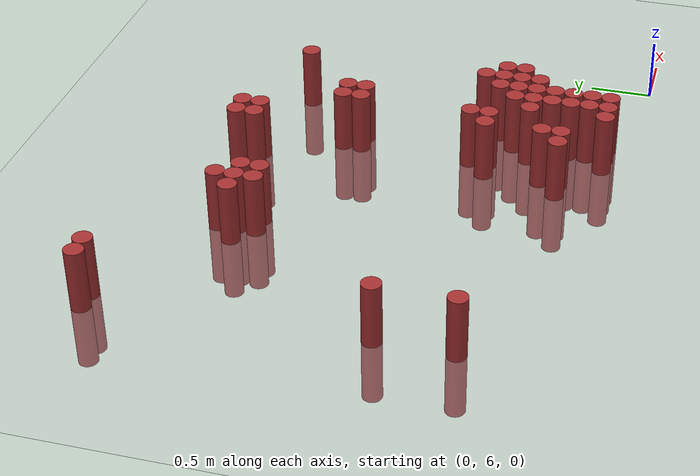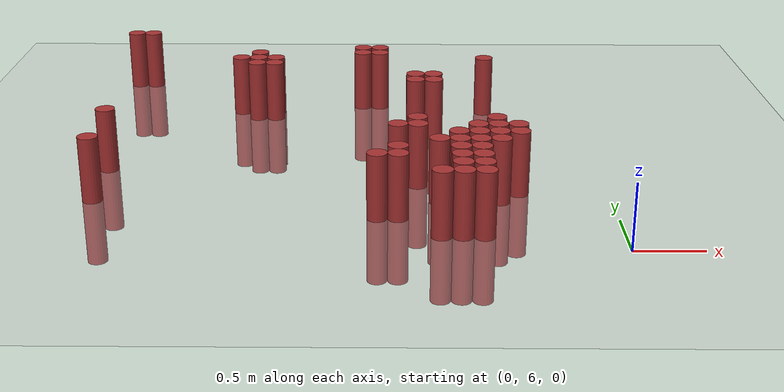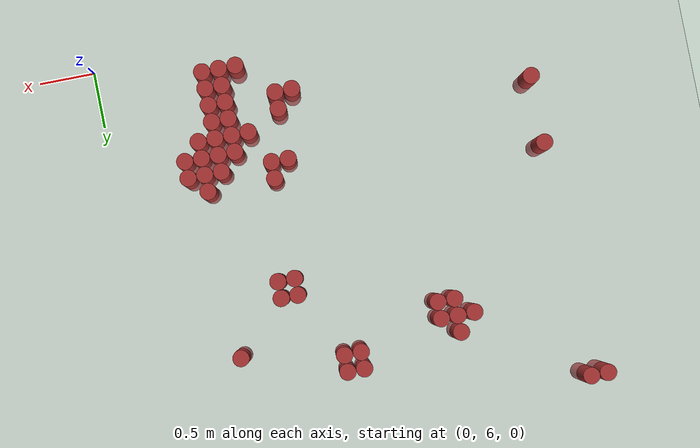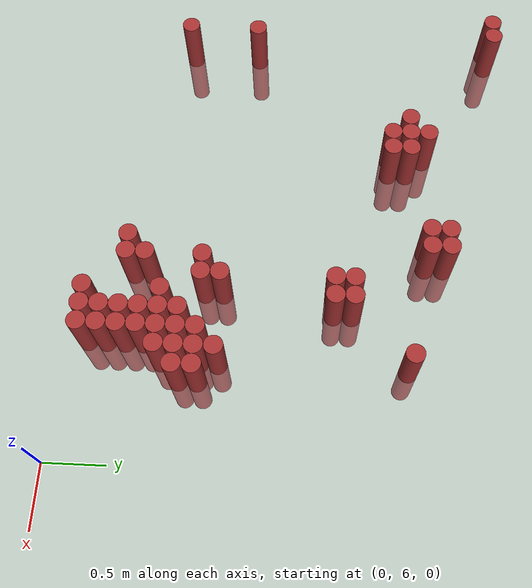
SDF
<sdf version="1.6">
 <world name="default">
  <model name="ground_plane">
   <static>1</static>
   <link name="link">
    <collision name="collision">
     <geometry><plane><normal>0 0 1</normal><size>100 100</size></plane></geometry>
     <surface><friction><ode><mu>100</mu><mu2>50</mu2></ode></friction></surface>
    </collision>
    <visual name="visual">
     <cast_shadows>0</cast_shadows>
     <geometry><plane><normal>0 0 1</normal><size>100 100</size></plane></geometry>
     <material>
      <script><uri>file://media/materials/scripts/gazebo.material</uri><name>Gazebo/Grey</name></script>
     </material>
    </visual>
   </link>
  </model>
  <model name="unit_cylinder_156">
   <static>1</static>
   <pose>-3.975000 9.525000 0.000000 0.000000 0.000000 0.000000</pose>
   <link name="link">
    <inertial>
     <mass>1</mass>
     <inertia><ixx>0.145833</ixx><ixy>0</ixy><ixz>0</ixz><iyy>0.145833</iyy><iyz>0</iyz><izz>0.125</izz></inertia>
    </inertial>
    <collision name="collision">
     <geometry><cylinder><radius>0.075000</radius><length>1</length></cylinder></geometry>
    </collision>
    <visual name="visual">
     <geometry><cylinder><radius>0.075000</radius><length>1</length></cylinder></geometry>
     <material>
      <ambient>0.648000 0.192000 0.192000 1</ambient>
      <diffuse>0.648000 0.192000 0.192000 1</diffuse>
     </material>
     <material>
      <script><name>Gazebo/Grey</name><uri>file://media/materials/scripts/gazebo.material</uri></script>
     </material>
    </visual>
   </link>
  </model>
  <model name="unit_cylinder_157">
   <static>1</static>
   <pose>-3.825000 6.825000 0.000000 0.000000 0.000000 0.000000</pose>
   <link name="link">
    <inertial>
     <mass>1</mass>
     <inertia><ixx>0.145833</ixx><ixy>0</ixy><ixz>0</ixz><iyy>0.145833</iyy><iyz>0</iyz><izz>0.125</izz></inertia>
    </inertial>
    <collision name="collision">
     <geometry><cylinder><radius>0.075000</radius><length>1</length></cylinder></geometry>
    </collision>
    <visual name="visual">
     <geometry><cylinder><radius>0.075000</radius><length>1</length></cylinder></geometry>
     <material>
      <ambient>0.648000 0.192000 0.192000 1</ambient>
      <diffuse>0.648000 0.192000 0.192000 1</diffuse>
     </material>
     <material>
      <script><name>Gazebo/Grey</name><uri>file://media/materials/scripts/gazebo.material</uri></script>
     </material>
    </visual>
   </link>
  </model>
  <model name="unit_cylinder_158">
   <static>1</static>
   <pose>-3.825000 7.425000 0.000000 0.000000 0.000000 0.000000</pose>
   <link name="link">
    <inertial>
     <mass>1</mass>
     <inertia><ixx>0.145833</ixx><ixy>0</ixy><ixz>0</ixz><iyy>0.145833</iyy><iyz>0</iyz><izz>0.125</izz></inertia>
    </inertial>
    <collision name="collision">
     <geometry><cylinder><radius>0.075000</radius><length>1</length></cylinder></geometry>
    </collision>
    <visual name="visual">
     <geometry><cylinder><radius>0.075000</radius><length>1</length></cylinder></geometry>
     <material>
      <ambient>0.648000 0.192000 0.192000 1</ambient>
      <diffuse>0.648000 0.192000 0.192000 1</diffuse>
     </material>
     <material>
      <script><name>Gazebo/Grey</name><uri>file://media/materials/scripts/gazebo.material</uri></script>
     </material>
    </visual>
   </link>
  </model>
  <model name="unit_cylinder_159">
   <static>1</static>
   <pose>-3.825000 9.525000 0.000000 0.000000 0.000000 0.000000</pose>
   <link name="link">
    <inertial>
     <mass>1</mass>
     <inertia><ixx>0.145833</ixx><ixy>0</ixy><ixz>0</ixz><iyy>0.145833</iyy><iyz>0</iyz><izz>0.125</izz></inertia>
    </inertial>
    <collision name="collision">
     <geometry><cylinder><radius>0.075000</radius><length>1</length></cylinder></geometry>
    </collision>
    <visual name="visual">
     <geometry><cylinder><radius>0.075000</radius><length>1</length></cylinder></geometry>
     <material>
      <ambient>0.648000 0.192000 0.192000 1</ambient>
      <diffuse>0.648000 0.192000 0.192000 1</diffuse>
     </material>
     <material>
      <script><name>Gazebo/Grey</name><uri>file://media/materials/scripts/gazebo.material</uri></script>
     </material>
    </visual>
   </link>
  </model>
  <model name="unit_cylinder_160">
   <static>1</static>
   <pose>-2.925000 8.775000 0.000000 0.000000 0.000000 0.000000</pose>
   <link name="link">
    <inertial>
     <mass>1</mass>
     <inertia><ixx>0.145833</ixx><ixy>0</ixy><ixz>0</ixz><iyy>0.145833</iyy><iyz>0</iyz><izz>0.125</izz></inertia>
    </inertial>
    <collision name="collision">
     <geometry><cylinder><radius>0.075000</radius><length>1</length></cylinder></geometry>
    </collision>
    <visual name="visual">
     <geometry><cylinder><radius>0.075000</radius><length>1</length></cylinder></geometry>
     <material>
      <ambient>0.648000 0.192000 0.192000 1</ambient>
      <diffuse>0.648000 0.192000 0.192000 1</diffuse>
     </material>
     <material>
      <script><name>Gazebo/Grey</name><uri>file://media/materials/scripts/gazebo.material</uri></script>
     </material>
    </visual>
   </link>
  </model>
  <model name="unit_cylinder_163">
   <static>1</static>
   <pose>-2.775000 8.625000 0.000000 0.000000 0.000000 0.000000</pose>
   <link name="link">
    <inertial>
     <mass>1</mass>
     <inertia><ixx>0.145833</ixx><ixy>0</ixy><ixz>0</ixz><iyy>0.145833</iyy><iyz>0</iyz><izz>0.125</izz></inertia>
    </inertial>
    <collision name="collision">
     <geometry><cylinder><radius>0.075000</radius><length>1</length></cylinder></geometry>
    </collision>
    <visual name="visual">
     <geometry><cylinder><radius>0.075000</radius><length>1</length></cylinder></geometry>
     <material>
      <ambient>0.648000 0.192000 0.192000 1</ambient>
      <diffuse>0.648000 0.192000 0.192000 1</diffuse>
     </material>
     <material>
      <script><name>Gazebo/Grey</name><uri>file://media/materials/scripts/gazebo.material</uri></script>
     </material>
    </visual>
   </link>
  </model>
  <model name="unit_cylinder_164">
   <static>1</static>
   <pose>-2.775000 8.775000 0.000000 0.000000 0.000000 0.000000</pose>
   <link name="link">
    <inertial>
     <mass>1</mass>
     <inertia><ixx>0.145833</ixx><ixy>0</ixy><ixz>0</ixz><iyy>0.145833</iyy><iyz>0</iyz><izz>0.125</izz></inertia>
    </inertial>
    <collision name="collision">
     <geometry><cylinder><radius>0.075000</radius><length>1</length></cylinder></geometry>
    </collision>
    <visual name="visual">
     <geometry><cylinder><radius>0.075000</radius><length>1</length></cylinder></geometry>
     <material>
      <ambient>0.648000 0.192000 0.192000 1</ambient>
      <diffuse>0.648000 0.192000 0.192000 1</diffuse>
     </material>
     <material>
      <script><name>Gazebo/Grey</name><uri>file://media/materials/scripts/gazebo.material</uri></script>
     </material>
    </visual>
   </link>
  </model>
  <model name="unit_cylinder_165">
   <static>1</static>
   <pose>-2.775000 8.925000 0.000000 0.000000 0.000000 0.000000</pose>
   <link name="link">
    <inertial>
     <mass>1</mass>
     <inertia><ixx>0.145833</ixx><ixy>0</ixy><ixz>0</ixz><iyy>0.145833</iyy><iyz>0</iyz><izz>0.125</izz></inertia>
    </inertial>
    <collision name="collision">
     <geometry><cylinder><radius>0.075000</radius><length>1</length></cylinder></geometry>
    </collision>
    <visual name="visual">
     <geometry><cylinder><radius>0.075000</radius><length>1</length></cylinder></geometry>
     <material>
      <ambient>0.648000 0.192000 0.192000 1</ambient>
      <diffuse>0.648000 0.192000 0.192000 1</diffuse>
     </material>
     <material>
      <script><name>Gazebo/Grey</name><uri>file://media/materials/scripts/gazebo.material</uri></script>
     </material>
    </visual>
   </link>
  </model>
  <model name="unit_cylinder_167">
   <static>1</static>
   <pose>-2.625000 8.625000 0.000000 0.000000 0.000000 0.000000</pose>
   <link name="link">
    <inertial>
     <mass>1</mass>
     <inertia><ixx>0.145833</ixx><ixy>0</ixy><ixz>0</ixz><iyy>0.145833</iyy><iyz>0</iyz><izz>0.125</izz></inertia>
    </inertial>
    <collision name="collision">
     <geometry><cylinder><radius>0.075000</radius><length>1</length></cylinder></geometry>
    </collision>
    <visual name="visual">
     <geometry><cylinder><radius>0.075000</radius><length>1</length></cylinder></geometry>
     <material>
      <ambient>0.648000 0.192000 0.192000 1</ambient>
      <diffuse>0.648000 0.192000 0.192000 1</diffuse>
     </material>
     <material>
      <script><name>Gazebo/Grey</name><uri>file://media/materials/scripts/gazebo.material</uri></script>
     </material>
    </visual>
   </link>
  </model>
  <model name="unit_cylinder_168">
   <static>1</static>
   <pose>-2.625000 8.775000 0.000000 0.000000 0.000000 0.000000</pose>
   <link name="link">
    <inertial>
     <mass>1</mass>
     <inertia><ixx>0.145833</ixx><ixy>0</ixy><ixz>0</ixz><iyy>0.145833</iyy><iyz>0</iyz><izz>0.125</izz></inertia>
    </inertial>
    <collision name="collision">
     <geometry><cylinder><radius>0.075000</radius><length>1</length></cylinder></geometry>
    </collision>
    <visual name="visual">
     <geometry><cylinder><radius>0.075000</radius><length>1</length></cylinder></geometry>
     <material>
      <ambient>0.648000 0.192000 0.192000 1</ambient>
      <diffuse>0.648000 0.192000 0.192000 1</diffuse>
     </material>
     <material>
      <script><name>Gazebo/Grey</name><uri>file://media/materials/scripts/gazebo.material</uri></script>
     </material>
    </visual>
   </link>
  </model>
  <model name="unit_cylinder_169">
   <static>1</static>
   <pose>-1.875000 8.925000 0.000000 0.000000 0.000000 0.000000</pose>
   <link name="link">
    <inertial>
     <mass>1</mass>
     <inertia><ixx>0.145833</ixx><ixy>0</ixy><ixz>0</ixz><iyy>0.145833</iyy><iyz>0</iyz><izz>0.125</izz></inertia>
    </inertial>
    <collision name="collision">
     <geometry><cylinder><radius>0.075000</radius><length>1</length></cylinder></geometry>
    </collision>
    <visual name="visual">
     <geometry><cylinder><radius>0.075000</radius><length>1</length></cylinder></geometry>
     <material>
      <ambient>0.648000 0.192000 0.192000 1</ambient>
      <diffuse>0.648000 0.192000 0.192000 1</diffuse>
     </material>
     <material>
      <script><name>Gazebo/Grey</name><uri>file://media/materials/scripts/gazebo.material</uri></script>
     </material>
    </visual>
   </link>
  </model>
  <model name="unit_cylinder_170">
   <static>1</static>
   <pose>-1.875000 9.075000 0.000000 0.000000 0.000000 0.000000</pose>
   <link name="link">
    <inertial>
     <mass>1</mass>
     <inertia><ixx>0.145833</ixx><ixy>0</ixy><ixz>0</ixz><iyy>0.145833</iyy><iyz>0</iyz><izz>0.125</izz></inertia>
    </inertial>
    <collision name="collision">
     <geometry><cylinder><radius>0.075000</radius><length>1</length></cylinder></geometry>
    </collision>
    <visual name="visual">
     <geometry><cylinder><radius>0.075000</radius><length>1</length></cylinder></geometry>
     <material>
      <ambient>0.648000 0.192000 0.192000 1</ambient>
      <diffuse>0.648000 0.192000 0.192000 1</diffuse>
     </material>
     <material>
      <script><name>Gazebo/Grey</name><uri>file://media/materials/scripts/gazebo.material</uri></script>
     </material>
    </visual>
   </link>
  </model>
  <model name="unit_cylinder_171">
   <static>1</static>
   <pose>-1.725000 6.525000 0.000000 0.000000 0.000000 0.000000</pose>
   <link name="link">
    <inertial>
     <mass>1</mass>
     <inertia><ixx>0.145833</ixx><ixy>0</ixy><ixz>0</ixz><iyy>0.145833</iyy><iyz>0</iyz><izz>0.125</izz></inertia>
    </inertial>
    <collision name="collision">
     <geometry><cylinder><radius>0.075000</radius><length>1</length></cylinder></geometry>
    </collision>
    <visual name="visual">
     <geometry><cylinder><radius>0.075000</radius><length>1</length></cylinder></geometry>
     <material>
      <ambient>0.648000 0.192000 0.192000 1</ambient>
      <diffuse>0.648000 0.192000 0.192000 1</diffuse>
     </material>
     <material>
      <script><name>Gazebo/Grey</name><uri>file://media/materials/scripts/gazebo.material</uri></script>
     </material>
    </visual>
   </link>
  </model>
  <model name="unit_cylinder_172">
   <static>1</static>
   <pose>-1.725000 8.925000 0.000000 0.000000 0.000000 0.000000</pose>
   <link name="link">
    <inertial>
     <mass>1</mass>
     <inertia><ixx>0.145833</ixx><ixy>0</ixy><ixz>0</ixz><iyy>0.145833</iyy><iyz>0</iyz><izz>0.125</izz></inertia>
    </inertial>
    <collision name="collision">
     <geometry><cylinder><radius>0.075000</radius><length>1</length></cylinder></geometry>
    </collision>
    <visual name="visual">
     <geometry><cylinder><radius>0.075000</radius><length>1</length></cylinder></geometry>
     <material>
      <ambient>0.648000 0.192000 0.192000 1</ambient>
      <diffuse>0.648000 0.192000 0.192000 1</diffuse>
     </material>
     <material>
      <script><name>Gazebo/Grey</name><uri>file://media/materials/scripts/gazebo.material</uri></script>
     </material>
    </visual>
   </link>
  </model>
  <model name="unit_cylinder_173">
   <static>1</static>
   <pose>-1.725000 9.075000 0.000000 0.000000 0.000000 0.000000</pose>
   <link name="link">
    <inertial>
     <mass>1</mass>
     <inertia><ixx>0.145833</ixx><ixy>0</ixy><ixz>0</ixz><iyy>0.145833</iyy><iyz>0</iyz><izz>0.125</izz></inertia>
    </inertial>
    <collision name="collision">
     <geometry><cylinder><radius>0.075000</radius><length>1</length></cylinder></geometry>
    </collision>
    <visual name="visual">
     <geometry><cylinder><radius>0.075000</radius><length>1</length></cylinder></geometry>
     <material>
      <ambient>0.648000 0.192000 0.192000 1</ambient>
      <diffuse>0.648000 0.192000 0.192000 1</diffuse>
     </material>
     <material>
      <script><name>Gazebo/Grey</name><uri>file://media/materials/scripts/gazebo.material</uri></script>
     </material>
    </visual>
   </link>
  </model>
  <model name="unit_cylinder_174">
   <static>1</static>
   <pose>-1.575000 6.525000 0.000000 0.000000 0.000000 0.000000</pose>
   <link name="link">
    <inertial>
     <mass>1</mass>
     <inertia><ixx>0.145833</ixx><ixy>0</ixy><ixz>0</ixz><iyy>0.145833</iyy><iyz>0</iyz><izz>0.125</izz></inertia>
    </inertial>
    <collision name="collision">
     <geometry><cylinder><radius>0.075000</radius><length>1</length></cylinder></geometry>
    </collision>
    <visual name="visual">
     <geometry><cylinder><radius>0.075000</radius><length>1</length></cylinder></geometry>
     <material>
      <ambient>0.648000 0.192000 0.192000 1</ambient>
      <diffuse>0.648000 0.192000 0.192000 1</diffuse>
     </material>
     <material>
      <script><name>Gazebo/Grey</name><uri>file://media/materials/scripts/gazebo.material</uri></script>
     </material>
    </visual>
   </link>
  </model>
  <model name="unit_cylinder_175">
   <static>1</static>
   <pose>-1.575000 6.675000 0.000000 0.000000 0.000000 0.000000</pose>
   <link name="link">
    <inertial>
     <mass>1</mass>
     <inertia><ixx>0.145833</ixx><ixy>0</ixy><ixz>0</ixz><iyy>0.145833</iyy><iyz>0</iyz><izz>0.125</izz></inertia>
    </inertial>
    <collision name="collision">
     <geometry><cylinder><radius>0.075000</radius><length>1</length></cylinder></geometry>
    </collision>
    <visual name="visual">
     <geometry><cylinder><radius>0.075000</radius><length>1</length></cylinder></geometry>
     <material>
      <ambient>0.648000 0.192000 0.192000 1</ambient>
      <diffuse>0.648000 0.192000 0.192000 1</diffuse>
     </material>
     <material>
      <script><name>Gazebo/Grey</name><uri>file://media/materials/scripts/gazebo.material</uri></script>
     </material>
    </visual>
   </link>
  </model>
  <model name="unit_cylinder_176">
   <static>1</static>
   <pose>-1.575000 7.125000 0.000000 0.000000 0.000000 0.000000</pose>
   <link name="link">
    <inertial>
     <mass>1</mass>
     <inertia><ixx>0.145833</ixx><ixy>0</ixy><ixz>0</ixz><iyy>0.145833</iyy><iyz>0</iyz><izz>0.125</izz></inertia>
    </inertial>
    <collision name="collision">
     <geometry><cylinder><radius>0.075000</radius><length>1</length></cylinder></geometry>
    </collision>
    <visual name="visual">
     <geometry><cylinder><radius>0.075000</radius><length>1</length></cylinder></geometry>
     <material>
      <ambient>0.648000 0.192000 0.192000 1</ambient>
      <diffuse>0.648000 0.192000 0.192000 1</diffuse>
     </material>
     <material>
      <script><name>Gazebo/Grey</name><uri>file://media/materials/scripts/gazebo.material</uri></script>
     </material>
    </visual>
   </link>
  </model>
  <model name="unit_cylinder_180">
   <static>1</static>
   <pose>-1.425000 7.125000 0.000000 0.000000 0.000000 0.000000</pose>
   <link name="link">
    <inertial>
     <mass>1</mass>
     <inertia><ixx>0.145833</ixx><ixy>0</ixy><ixz>0</ixz><iyy>0.145833</iyy><iyz>0</iyz><izz>0.125</izz></inertia>
    </inertial>
    <collision name="collision">
     <geometry><cylinder><radius>0.075000</radius><length>1</length></cylinder></geometry>
    </collision>
    <visual name="visual">
     <geometry><cylinder><radius>0.075000</radius><length>1</length></cylinder></geometry>
     <material>
      <ambient>0.648000 0.192000 0.192000 1</ambient>
      <diffuse>0.648000 0.192000 0.192000 1</diffuse>
     </material>
     <material>
      <script><name>Gazebo/Grey</name><uri>file://media/materials/scripts/gazebo.material</uri></script>
     </material>
    </visual>
   </link>
  </model>
  <model name="unit_cylinder_181">
   <static>1</static>
   <pose>-1.425000 7.275000 0.000000 0.000000 0.000000 0.000000</pose>
   <link name="link">
    <inertial>
     <mass>1</mass>
     <inertia><ixx>0.145833</ixx><ixy>0</ixy><ixz>0</ixz><iyy>0.145833</iyy><iyz>0</iyz><izz>0.125</izz></inertia>
    </inertial>
    <collision name="collision">
     <geometry><cylinder><radius>0.075000</radius><length>1</length></cylinder></geometry>
    </collision>
    <visual name="visual">
     <geometry><cylinder><radius>0.075000</radius><length>1</length></cylinder></geometry>
     <material>
      <ambient>0.648000 0.192000 0.192000 1</ambient>
      <diffuse>0.648000 0.192000 0.192000 1</diffuse>
     </material>
     <material>
      <script><name>Gazebo/Grey</name><uri>file://media/materials/scripts/gazebo.material</uri></script>
     </material>
    </visual>
   </link>
  </model>
  <model name="unit_cylinder_182">
   <static>1</static>
   <pose>-1.425000 8.175000 0.000000 0.000000 0.000000 0.000000</pose>
   <link name="link">
    <inertial>
     <mass>1</mass>
     <inertia><ixx>0.145833</ixx><ixy>0</ixy><ixz>0</ixz><iyy>0.145833</iyy><iyz>0</iyz><izz>0.125</izz></inertia>
    </inertial>
    <collision name="collision">
     <geometry><cylinder><radius>0.075000</radius><length>1</length></cylinder></geometry>
    </collision>
    <visual name="visual">
     <geometry><cylinder><radius>0.075000</radius><length>1</length></cylinder></geometry>
     <material>
      <ambient>0.648000 0.192000 0.192000 1</ambient>
      <diffuse>0.648000 0.192000 0.192000 1</diffuse>
     </material>
     <material>
      <script><name>Gazebo/Grey</name><uri>file://media/materials/scripts/gazebo.material</uri></script>
     </material>
    </visual>
   </link>
  </model>
  <model name="unit_cylinder_183">
   <static>1</static>
   <pose>-1.425000 8.325000 0.000000 0.000000 0.000000 0.000000</pose>
   <link name="link">
    <inertial>
     <mass>1</mass>
     <inertia><ixx>0.145833</ixx><ixy>0</ixy><ixz>0</ixz><iyy>0.145833</iyy><iyz>0</iyz><izz>0.125</izz></inertia>
    </inertial>
    <collision name="collision">
     <geometry><cylinder><radius>0.075000</radius><length>1</length></cylinder></geometry>
    </collision>
    <visual name="visual">
     <geometry><cylinder><radius>0.075000</radius><length>1</length></cylinder></geometry>
     <material>
      <ambient>0.648000 0.192000 0.192000 1</ambient>
      <diffuse>0.648000 0.192000 0.192000 1</diffuse>
     </material>
     <material>
      <script><name>Gazebo/Grey</name><uri>file://media/materials/scripts/gazebo.material</uri></script>
     </material>
    </visual>
   </link>
  </model>
  <model name="unit_cylinder_186">
   <static>1</static>
   <pose>-1.275000 6.225000 0.000000 0.000000 0.000000 0.000000</pose>
   <link name="link">
    <inertial>
     <mass>1</mass>
     <inertia><ixx>0.145833</ixx><ixy>0</ixy><ixz>0</ixz><iyy>0.145833</iyy><iyz>0</iyz><izz>0.125</izz></inertia>
    </inertial>
    <collision name="collision">
     <geometry><cylinder><radius>0.075000</radius><length>1</length></cylinder></geometry>
    </collision>
    <visual name="visual">
     <geometry><cylinder><radius>0.075000</radius><length>1</length></cylinder></geometry>
     <material>
      <ambient>0.648000 0.192000 0.192000 1</ambient>
      <diffuse>0.648000 0.192000 0.192000 1</diffuse>
     </material>
     <material>
      <script><name>Gazebo/Grey</name><uri>file://media/materials/scripts/gazebo.material</uri></script>
     </material>
    </visual>
   </link>
  </model>
  <model name="unit_cylinder_187">
   <static>1</static>
   <pose>-1.275000 6.825000 0.000000 0.000000 0.000000 0.000000</pose>
   <link name="link">
    <inertial>
     <mass>1</mass>
     <inertia><ixx>0.145833</ixx><ixy>0</ixy><ixz>0</ixz><iyy>0.145833</iyy><iyz>0</iyz><izz>0.125</izz></inertia>
    </inertial>
    <collision name="collision">
     <geometry><cylinder><radius>0.075000</radius><length>1</length></cylinder></geometry>
    </collision>
    <visual name="visual">
     <geometry><cylinder><radius>0.075000</radius><length>1</length></cylinder></geometry>
     <material>
      <ambient>0.648000 0.192000 0.192000 1</ambient>
      <diffuse>0.648000 0.192000 0.192000 1</diffuse>
     </material>
     <material>
      <script><name>Gazebo/Grey</name><uri>file://media/materials/scripts/gazebo.material</uri></script>
     </material>
    </visual>
   </link>
  </model>
  <model name="unit_cylinder_188">
   <static>1</static>
   <pose>-1.275000 8.175000 0.000000 0.000000 0.000000 0.000000</pose>
   <link name="link">
    <inertial>
     <mass>1</mass>
     <inertia><ixx>0.145833</ixx><ixy>0</ixy><ixz>0</ixz><iyy>0.145833</iyy><iyz>0</iyz><izz>0.125</izz></inertia>
    </inertial>
    <collision name="collision">
     <geometry><cylinder><radius>0.075000</radius><length>1</length></cylinder></geometry>
    </collision>
    <visual name="visual">
     <geometry><cylinder><radius>0.075000</radius><length>1</length></cylinder></geometry>
     <material>
      <ambient>0.648000 0.192000 0.192000 1</ambient>
      <diffuse>0.648000 0.192000 0.192000 1</diffuse>
     </material>
     <material>
      <script><name>Gazebo/Grey</name><uri>file://media/materials/scripts/gazebo.material</uri></script>
     </material>
    </visual>
   </link>
  </model>
  <model name="unit_cylinder_189">
   <static>1</static>
   <pose>-1.275000 8.325000 0.000000 0.000000 0.000000 0.000000</pose>
   <link name="link">
    <inertial>
     <mass>1</mass>
     <inertia><ixx>0.145833</ixx><ixy>0</ixy><ixz>0</ixz><iyy>0.145833</iyy><iyz>0</iyz><izz>0.125</izz></inertia>
    </inertial>
    <collision name="collision">
     <geometry><cylinder><radius>0.075000</radius><length>1</length></cylinder></geometry>
    </collision>
    <visual name="visual">
     <geometry><cylinder><radius>0.075000</radius><length>1</length></cylinder></geometry>
     <material>
      <ambient>0.648000 0.192000 0.192000 1</ambient>
      <diffuse>0.648000 0.192000 0.192000 1</diffuse>
     </material>
     <material>
      <script><name>Gazebo/Grey</name><uri>file://media/materials/scripts/gazebo.material</uri></script>
     </material>
    </visual>
   </link>
  </model>
  <model name="unit_cylinder_192">
   <static>1</static>
   <pose>-1.125000 6.225000 0.000000 0.000000 0.000000 0.000000</pose>
   <link name="link">
    <inertial>
     <mass>1</mass>
     <inertia><ixx>0.145833</ixx><ixy>0</ixy><ixz>0</ixz><iyy>0.145833</iyy><iyz>0</iyz><izz>0.125</izz></inertia>
    </inertial>
    <collision name="collision">
     <geometry><cylinder><radius>0.075000</radius><length>1</length></cylinder></geometry>
    </collision>
    <visual name="visual">
     <geometry><cylinder><radius>0.075000</radius><length>1</length></cylinder></geometry>
     <material>
      <ambient>0.648000 0.192000 0.192000 1</ambient>
      <diffuse>0.648000 0.192000 0.192000 1</diffuse>
     </material>
     <material>
      <script><name>Gazebo/Grey</name><uri>file://media/materials/scripts/gazebo.material</uri></script>
     </material>
    </visual>
   </link>
  </model>
  <model name="unit_cylinder_193">
   <static>1</static>
   <pose>-1.125000 6.375000 0.000000 0.000000 0.000000 0.000000</pose>
   <link name="link">
    <inertial>
     <mass>1</mass>
     <inertia><ixx>0.145833</ixx><ixy>0</ixy><ixz>0</ixz><iyy>0.145833</iyy><iyz>0</iyz><izz>0.125</izz></inertia>
    </inertial>
    <collision name="collision">
     <geometry><cylinder><radius>0.075000</radius><length>1</length></cylinder></geometry>
    </collision>
    <visual name="visual">
     <geometry><cylinder><radius>0.075000</radius><length>1</length></cylinder></geometry>
     <material>
      <ambient>0.648000 0.192000 0.192000 1</ambient>
      <diffuse>0.648000 0.192000 0.192000 1</diffuse>
     </material>
     <material>
      <script><name>Gazebo/Grey</name><uri>file://media/materials/scripts/gazebo.material</uri></script>
     </material>
    </visual>
   </link>
  </model>
  <model name="unit_cylinder_194">
   <static>1</static>
   <pose>-1.125000 6.525000 0.000000 0.000000 0.000000 0.000000</pose>
   <link name="link">
    <inertial>
     <mass>1</mass>
     <inertia><ixx>0.145833</ixx><ixy>0</ixy><ixz>0</ixz><iyy>0.145833</iyy><iyz>0</iyz><izz>0.125</izz></inertia>
    </inertial>
    <collision name="collision">
     <geometry><cylinder><radius>0.075000</radius><length>1</length></cylinder></geometry>
    </collision>
    <visual name="visual">
     <geometry><cylinder><radius>0.075000</radius><length>1</length></cylinder></geometry>
     <material>
      <ambient>0.648000 0.192000 0.192000 1</ambient>
      <diffuse>0.648000 0.192000 0.192000 1</diffuse>
     </material>
     <material>
      <script><name>Gazebo/Grey</name><uri>file://media/materials/scripts/gazebo.material</uri></script>
     </material>
    </visual>
   </link>
  </model>
  <model name="unit_cylinder_195">
   <static>1</static>
   <pose>-1.125000 6.675000 0.000000 0.000000 0.000000 0.000000</pose>
   <link name="link">
    <inertial>
     <mass>1</mass>
     <inertia><ixx>0.145833</ixx><ixy>0</ixy><ixz>0</ixz><iyy>0.145833</iyy><iyz>0</iyz><izz>0.125</izz></inertia>
    </inertial>
    <collision name="collision">
     <geometry><cylinder><radius>0.075000</radius><length>1</length></cylinder></geometry>
    </collision>
    <visual name="visual">
     <geometry><cylinder><radius>0.075000</radius><length>1</length></cylinder></geometry>
     <material>
      <ambient>0.648000 0.192000 0.192000 1</ambient>
      <diffuse>0.648000 0.192000 0.192000 1</diffuse>
     </material>
     <material>
      <script><name>Gazebo/Grey</name><uri>file://media/materials/scripts/gazebo.material</uri></script>
     </material>
    </visual>
   </link>
  </model>
  <model name="unit_cylinder_196">
   <static>1</static>
   <pose>-1.125000 6.825000 0.000000 0.000000 0.000000 0.000000</pose>
   <link name="link">
    <inertial>
     <mass>1</mass>
     <inertia><ixx>0.145833</ixx><ixy>0</ixy><ixz>0</ixz><iyy>0.145833</iyy><iyz>0</iyz><izz>0.125</izz></inertia>
    </inertial>
    <collision name="collision">
     <geometry><cylinder><radius>0.075000</radius><length>1</length></cylinder></geometry>
    </collision>
    <visual name="visual">
     <geometry><cylinder><radius>0.075000</radius><length>1</length></cylinder></geometry>
     <material>
      <ambient>0.648000 0.192000 0.192000 1</ambient>
      <diffuse>0.648000 0.192000 0.192000 1</diffuse>
     </material>
     <material>
      <script><name>Gazebo/Grey</name><uri>file://media/materials/scripts/gazebo.material</uri></script>
     </material>
    </visual>
   </link>
  </model>
  <model name="unit_cylinder_197">
   <static>1</static>
   <pose>-1.125000 6.975000 0.000000 0.000000 0.000000 0.000000</pose>
   <link name="link">
    <inertial>
     <mass>1</mass>
     <inertia><ixx>0.145833</ixx><ixy>0</ixy><ixz>0</ixz><iyy>0.145833</iyy><iyz>0</iyz><izz>0.125</izz></inertia>
    </inertial>
    <collision name="collision">
     <geometry><cylinder><radius>0.075000</radius><length>1</length></cylinder></geometry>
    </collision>
    <visual name="visual">
     <geometry><cylinder><radius>0.075000</radius><length>1</length></cylinder></geometry>
     <material>
      <ambient>0.648000 0.192000 0.192000 1</ambient>
      <diffuse>0.648000 0.192000 0.192000 1</diffuse>
     </material>
     <material>
      <script><name>Gazebo/Grey</name><uri>file://media/materials/scripts/gazebo.material</uri></script>
     </material>
    </visual>
   </link>
  </model>
  <model name="unit_cylinder_203">
   <static>1</static>
   <pose>-0.975000 6.225000 0.000000 0.000000 0.000000 0.000000</pose>
   <link name="link">
    <inertial>
     <mass>1</mass>
     <inertia><ixx>0.145833</ixx><ixy>0</ixy><ixz>0</ixz><iyy>0.145833</iyy><iyz>0</iyz><izz>0.125</izz></inertia>
    </inertial>
    <collision name="collision">
     <geometry><cylinder><radius>0.075000</radius><length>1</length></cylinder></geometry>
    </collision>
    <visual name="visual">
     <geometry><cylinder><radius>0.075000</radius><length>1</length></cylinder></geometry>
     <material>
      <ambient>0.648000 0.192000 0.192000 1</ambient>
      <diffuse>0.648000 0.192000 0.192000 1</diffuse>
     </material>
     <material>
      <script><name>Gazebo/Grey</name><uri>file://media/materials/scripts/gazebo.material</uri></script>
     </material>
    </visual>
   </link>
  </model>
  <model name="unit_cylinder_204">
   <static>1</static>
   <pose>-0.975000 6.375000 0.000000 0.000000 0.000000 0.000000</pose>
   <link name="link">
    <inertial>
     <mass>1</mass>
     <inertia><ixx>0.145833</ixx><ixy>0</ixy><ixz>0</ixz><iyy>0.145833</iyy><iyz>0</iyz><izz>0.125</izz></inertia>
    </inertial>
    <collision name="collision">
     <geometry><cylinder><radius>0.075000</radius><length>1</length></cylinder></geometry>
    </collision>
    <visual name="visual">
     <geometry><cylinder><radius>0.075000</radius><length>1</length></cylinder></geometry>
     <material>
      <ambient>0.648000 0.192000 0.192000 1</ambient>
      <diffuse>0.648000 0.192000 0.192000 1</diffuse>
     </material>
     <material>
      <script><name>Gazebo/Grey</name><uri>file://media/materials/scripts/gazebo.material</uri></script>
     </material>
    </visual>
   </link>
  </model>
  <model name="unit_cylinder_205">
   <static>1</static>
   <pose>-0.975000 6.525000 0.000000 0.000000 0.000000 0.000000</pose>
   <link name="link">
    <inertial>
     <mass>1</mass>
     <inertia><ixx>0.145833</ixx><ixy>0</ixy><ixz>0</ixz><iyy>0.145833</iyy><iyz>0</iyz><izz>0.125</izz></inertia>
    </inertial>
    <collision name="collision">
     <geometry><cylinder><radius>0.075000</radius><length>1</length></cylinder></geometry>
    </collision>
    <visual name="visual">
     <geometry><cylinder><radius>0.075000</radius><length>1</length></cylinder></geometry>
     <material>
      <ambient>0.648000 0.192000 0.192000 1</ambient>
      <diffuse>0.648000 0.192000 0.192000 1</diffuse>
     </material>
     <material>
      <script><name>Gazebo/Grey</name><uri>file://media/materials/scripts/gazebo.material</uri></script>
     </material>
    </visual>
   </link>
  </model>
  <model name="unit_cylinder_206">
   <static>1</static>
   <pose>-0.975000 6.675000 0.000000 0.000000 0.000000 0.000000</pose>
   <link name="link">
    <inertial>
     <mass>1</mass>
     <inertia><ixx>0.145833</ixx><ixy>0</ixy><ixz>0</ixz><iyy>0.145833</iyy><iyz>0</iyz><izz>0.125</izz></inertia>
    </inertial>
    <collision name="collision">
     <geometry><cylinder><radius>0.075000</radius><length>1</length></cylinder></geometry>
    </collision>
    <visual name="visual">
     <geometry><cylinder><radius>0.075000</radius><length>1</length></cylinder></geometry>
     <material>
      <ambient>0.648000 0.192000 0.192000 1</ambient>
      <diffuse>0.648000 0.192000 0.192000 1</diffuse>
     </material>
     <material>
      <script><name>Gazebo/Grey</name><uri>file://media/materials/scripts/gazebo.material</uri></script>
     </material>
    </visual>
   </link>
  </model>
  <model name="unit_cylinder_207">
   <static>1</static>
   <pose>-0.975000 6.825000 0.000000 0.000000 0.000000 0.000000</pose>
   <link name="link">
    <inertial>
     <mass>1</mass>
     <inertia><ixx>0.145833</ixx><ixy>0</ixy><ixz>0</ixz><iyy>0.145833</iyy><iyz>0</iyz><izz>0.125</izz></inertia>
    </inertial>
    <collision name="collision">
     <geometry><cylinder><radius>0.075000</radius><length>1</length></cylinder></geometry>
    </collision>
    <visual name="visual">
     <geometry><cylinder><radius>0.075000</radius><length>1</length></cylinder></geometry>
     <material>
      <ambient>0.648000 0.192000 0.192000 1</ambient>
      <diffuse>0.648000 0.192000 0.192000 1</diffuse>
     </material>
     <material>
      <script><name>Gazebo/Grey</name><uri>file://media/materials/scripts/gazebo.material</uri></script>
     </material>
    </visual>
   </link>
  </model>
  <model name="unit_cylinder_208">
   <static>1</static>
   <pose>-0.975000 6.975000 0.000000 0.000000 0.000000 0.000000</pose>
   <link name="link">
    <inertial>
     <mass>1</mass>
     <inertia><ixx>0.145833</ixx><ixy>0</ixy><ixz>0</ixz><iyy>0.145833</iyy><iyz>0</iyz><izz>0.125</izz></inertia>
    </inertial>
    <collision name="collision">
     <geometry><cylinder><radius>0.075000</radius><length>1</length></cylinder></geometry>
    </collision>
    <visual name="visual">
     <geometry><cylinder><radius>0.075000</radius><length>1</length></cylinder></geometry>
     <material>
      <ambient>0.648000 0.192000 0.192000 1</ambient>
      <diffuse>0.648000 0.192000 0.192000 1</diffuse>
     </material>
     <material>
      <script><name>Gazebo/Grey</name><uri>file://media/materials/scripts/gazebo.material</uri></script>
     </material>
    </visual>
   </link>
  </model>
  <model name="unit_cylinder_209">
   <static>1</static>
   <pose>-0.975000 7.125000 0.000000 0.000000 0.000000 0.000000</pose>
   <link name="link">
    <inertial>
     <mass>1</mass>
     <inertia><ixx>0.145833</ixx><ixy>0</ixy><ixz>0</ixz><iyy>0.145833</iyy><iyz>0</iyz><izz>0.125</izz></inertia>
    </inertial>
    <collision name="collision">
     <geometry><cylinder><radius>0.075000</radius><length>1</length></cylinder></geometry>
    </collision>
    <visual name="visual">
     <geometry><cylinder><radius>0.075000</radius><length>1</length></cylinder></geometry>
     <material>
      <ambient>0.648000 0.192000 0.192000 1</ambient>
      <diffuse>0.648000 0.192000 0.192000 1</diffuse>
     </material>
     <material>
      <script><name>Gazebo/Grey</name><uri>file://media/materials/scripts/gazebo.material</uri></script>
     </material>
    </visual>
   </link>
  </model>
  <model name="unit_cylinder_213">
   <static>1</static>
   <pose>-0.825000 6.825000 0.000000 0.000000 0.000000 0.000000</pose>
   <link name="link">
    <inertial>
     <mass>1</mass>
     <inertia><ixx>0.145833</ixx><ixy>0</ixy><ixz>0</ixz><iyy>0.145833</iyy><iyz>0</iyz><izz>0.125</izz></inertia>
    </inertial>
    <collision name="collision">
     <geometry><cylinder><radius>0.075000</radius><length>1</length></cylinder></geometry>
    </collision>
    <visual name="visual">
     <geometry><cylinder><radius>0.075000</radius><length>1</length></cylinder></geometry>
     <material>
      <ambient>0.648000 0.192000 0.192000 1</ambient>
      <diffuse>0.648000 0.192000 0.192000 1</diffuse>
     </material>
     <material>
      <script><name>Gazebo/Grey</name><uri>file://media/materials/scripts/gazebo.material</uri></script>
     </material>
    </visual>
   </link>
  </model>
  <model name="unit_cylinder_214">
   <static>1</static>
   <pose>-0.825000 6.975000 0.000000 0.000000 0.000000 0.000000</pose>
   <link name="link">
    <inertial>
     <mass>1</mass>
     <inertia><ixx>0.145833</ixx><ixy>0</ixy><ixz>0</ixz><iyy>0.145833</iyy><iyz>0</iyz><izz>0.125</izz></inertia>
    </inertial>
    <collision name="collision">
     <geometry><cylinder><radius>0.075000</radius><length>1</length></cylinder></geometry>
    </collision>
    <visual name="visual">
     <geometry><cylinder><radius>0.075000</radius><length>1</length></cylinder></geometry>
     <material>
      <ambient>0.648000 0.192000 0.192000 1</ambient>
      <diffuse>0.648000 0.192000 0.192000 1</diffuse>
     </material>
     <material>
      <script><name>Gazebo/Grey</name><uri>file://media/materials/scripts/gazebo.material</uri></script>
     </material>
    </visual>
   </link>
  </model>
  <model name="unit_cylinder_215">
   <static>1</static>
   <pose>-0.825000 7.125000 0.000000 0.000000 0.000000 0.000000</pose>
   <link name="link">
    <inertial>
     <mass>1</mass>
     <inertia><ixx>0.145833</ixx><ixy>0</ixy><ixz>0</ixz><iyy>0.145833</iyy><iyz>0</iyz><izz>0.125</izz></inertia>
    </inertial>
    <collision name="collision">
     <geometry><cylinder><radius>0.075000</radius><length>1</length></cylinder></geometry>
    </collision>
    <visual name="visual">
     <geometry><cylinder><radius>0.075000</radius><length>1</length></cylinder></geometry>
     <material>
      <ambient>0.648000 0.192000 0.192000 1</ambient>
      <diffuse>0.648000 0.192000 0.192000 1</diffuse>
     </material>
     <material>
      <script><name>Gazebo/Grey</name><uri>file://media/materials/scripts/gazebo.material</uri></script>
     </material>
    </visual>
   </link>
  </model>
  <model name="unit_cylinder_216">
   <static>1</static>
   <pose>-0.825000 7.275000 0.000000 0.000000 0.000000 0.000000</pose>
   <link name="link">
    <inertial>
     <mass>1</mass>
     <inertia><ixx>0.145833</ixx><ixy>0</ixy><ixz>0</ixz><iyy>0.145833</iyy><iyz>0</iyz><izz>0.125</izz></inertia>
    </inertial>
    <collision name="collision">
     <geometry><cylinder><radius>0.075000</radius><length>1</length></cylinder></geometry>
    </collision>
    <visual name="visual">
     <geometry><cylinder><radius>0.075000</radius><length>1</length></cylinder></geometry>
     <material>
      <ambient>0.648000 0.192000 0.192000 1</ambient>
      <diffuse>0.648000 0.192000 0.192000 1</diffuse>
     </material>
     <material>
      <script><name>Gazebo/Grey</name><uri>file://media/materials/scripts/gazebo.material</uri></script>
     </material>
    </visual>
   </link>
  </model>
  <model name="unit_cylinder_217">
   <static>1</static>
   <pose>-0.825000 8.775000 0.000000 0.000000 0.000000 0.000000</pose>
   <link name="link">
    <inertial>
     <mass>1</mass>
     <inertia><ixx>0.145833</ixx><ixy>0</ixy><ixz>0</ixz><iyy>0.145833</iyy><iyz>0</iyz><izz>0.125</izz></inertia>
    </inertial>
    <collision name="collision">
     <geometry><cylinder><radius>0.075000</radius><length>1</length></cylinder></geometry>
    </collision>
    <visual name="visual">
     <geometry><cylinder><radius>0.075000</radius><length>1</length></cylinder></geometry>
     <material>
      <ambient>0.648000 0.192000 0.192000 1</ambient>
      <diffuse>0.648000 0.192000 0.192000 1</diffuse>
     </material>
     <material>
      <script><name>Gazebo/Grey</name><uri>file://media/materials/scripts/gazebo.material</uri></script>
     </material>
    </visual>
   </link>
  </model>
  <model name="unit_cylinder_218">
   <static>1</static>
   <pose>-0.675000 6.975000 0.000000 0.000000 0.000000 0.000000</pose>
   <link name="link">
    <inertial>
     <mass>1</mass>
     <inertia><ixx>0.145833</ixx><ixy>0</ixy><ixz>0</ixz><iyy>0.145833</iyy><iyz>0</iyz><izz>0.125</izz></inertia>
    </inertial>
    <collision name="collision">
     <geometry><cylinder><radius>0.075000</radius><length>1</length></cylinder></geometry>
    </collision>
    <visual name="visual">
     <geometry><cylinder><radius>0.075000</radius><length>1</length></cylinder></geometry>
     <material>
      <ambient>0.648000 0.192000 0.192000 1</ambient>
      <diffuse>0.648000 0.192000 0.192000 1</diffuse>
     </material>
     <material>
      <script><name>Gazebo/Grey</name><uri>file://media/materials/scripts/gazebo.material</uri></script>
     </material>
    </visual>
   </link>
  </model>
  <model name="unit_cylinder_219">
   <static>1</static>
   <pose>-0.675000 7.125000 0.000000 0.000000 0.000000 0.000000</pose>
   <link name="link">
    <inertial>
     <mass>1</mass>
     <inertia><ixx>0.145833</ixx><ixy>0</ixy><ixz>0</ixz><iyy>0.145833</iyy><iyz>0</iyz><izz>0.125</izz></inertia>
    </inertial>
    <collision name="collision">
     <geometry><cylinder><radius>0.075000</radius><length>1</length></cylinder></geometry>
    </collision>
    <visual name="visual">
     <geometry><cylinder><radius>0.075000</radius><length>1</length></cylinder></geometry>
     <material>
      <ambient>0.648000 0.192000 0.192000 1</ambient>
      <diffuse>0.648000 0.192000 0.192000 1</diffuse>
     </material>
     <material>
      <script><name>Gazebo/Grey</name><uri>file://media/materials/scripts/gazebo.material</uri></script>
     </material>
    </visual>
   </link>
  </model>
 </world>
</sdf>
